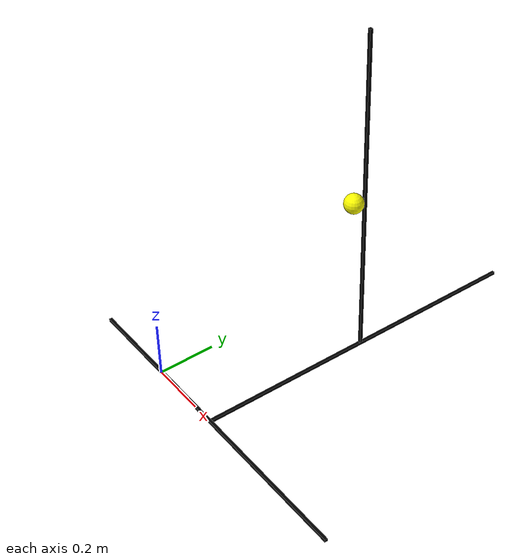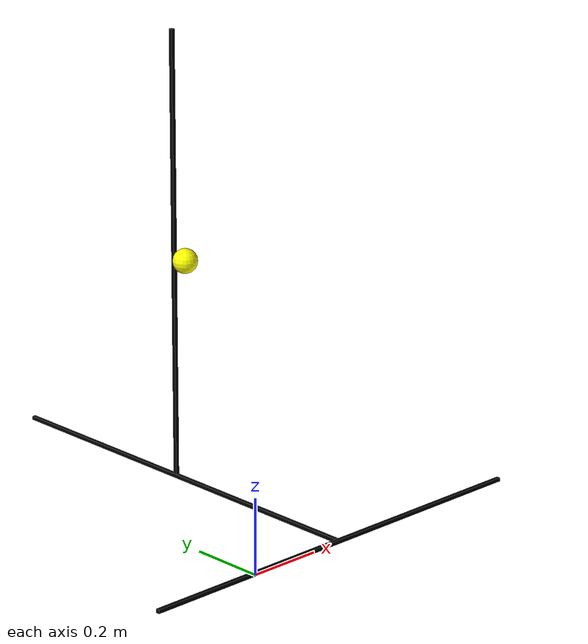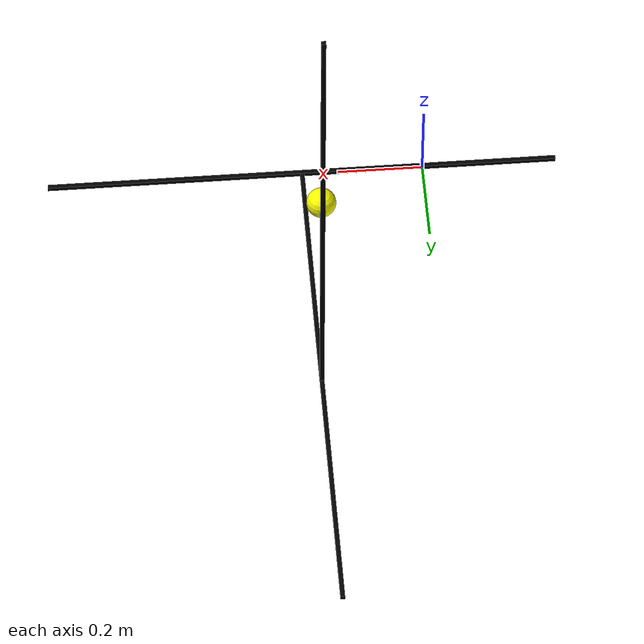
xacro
<?xml version="1.0"?>
<robot xmlns:xacro="http://www.ros.org/wiki/xacro"  name="tennis_ball">

  <!-- Material Definition -->
  <material name="yellow">
    <color rgba="1 1 0 1"/>
  </material>

  <material name="black">
    <color rgba="0 0 0 1"/>
  </material>

  <link name="world">
  </link>

  <link name="base_link">
    <origin xyz="0 0 0" rpy="0 0 0"/>
    <visual>
      <geometry>
        <box size="1.2 0.01 0.01"/>
      </geometry>
      <material name="black"/>
    </visual>
    <collision>
      <geometry>
        <box size="1.2 0.01 0.01"/>
      </geometry>
    </collision>
    <inertial>
      <mass value="10"/>
      <origin rpy="0 0 0" xyz="0 0 0"/>
      <inertia ixx="0.008333333333" ixy="0" ixz="0" iyy="0.0.06041666667" iyz="0" izz="0.0.06041666667"/>
    </inertial>
  </link>

  <!-- The gantry robot -->
  <link name="x_link">
    <visual>
      <origin xyz="0 0 0" rpy="0 0 0"/>
      <geometry>
        <box size="0.01 1.2 0.01"/>
      </geometry>
      <material name="black"/>
    </visual>

    <collision>
      <origin xyz="0 0 0" rpy="0 0 0"/>
      <geometry>
        <box size="0.01 1.2 0.01"/>
      </geometry>
    </collision>

    <inertial>
      <mass value="0.5"/>
      <origin rpy="0 0 0" xyz="0 0 0"/>
      <inertia ixx="0.0.06041666667" ixy="0" ixz="0" iyy="0.0008333333333" iyz="0" izz="0.0.06041666667"/>
    </inertial>
  </link>

  <link name="y_link">
    <visual>
      <origin xyz="0 0 0" rpy="0 0 0"/>
      <geometry>
        <box size="0.01 0.01 1.2"/>
      </geometry>
      <material name="black"/>
    </visual>

    <collision>
      <origin xyz="0 0 0" rpy="0 0 0"/>
      <geometry>
        <box size="0.01 0.01 1.2"/>
      </geometry>
    </collision>

    <inertial>
      <mass value="0.5"/>
      <origin rpy="0 0 0" xyz="0 0 0"/>
      <inertia ixx="0.0.06041666667" ixy="0" ixz="0" iyy="0.0.06041666667" iyz="0" izz="0.0008333333333"/>
    </inertial>
  </link>

  <link name="z_link">
    <visual>
      <origin xyz="0 0 0" rpy="0 0 0"/>
      <geometry>
        <box size="0.01 0.01 0.01"/>
      </geometry>
      <material name="black"/>
    </visual>

    <collision>
      <origin xyz="0 0 0" rpy="0 0 0"/>
      <geometry>
        <box size="0.01 0.01 0.1"/>
      </geometry>
    </collision>

    <inertial>
      <mass value="0.5"/>
      <origin rpy="0 0 0" xyz="0 0 0"/>
      <inertia ixx="0.0008333333333" ixy="0" ixz="0" iyy="0.0008333333333" iyz="0" izz="0.0008333333333"/>
    </inertial>
  </link>

  <!-- Link Definition -->
  <link name="ball">
    <visual>
      <origin xyz="0 0 0" rpy="0 0 0"/>
      <geometry>
        <sphere radius="0.033"/>
      </geometry>
      <material name="yellow"/>
    </visual>
    <collision>
      <origin xyz="0 0 0" rpy="0 0 0"/>
      <geometry>
        <sphere radius="0.033"/>
      </geometry>
    </collision>
    <inertial>
      <origin xyz="0 0 0" rpy="0 0 0"/>
      <mass value="1"/>
      <inertia ixx="0.001" ixy="0" ixz="0" iyy="0.001" iyz="0" izz="0.001"/>
    </inertial>
  </link>

  <!-- Joints  -->
  <joint name="world_to_base_link_joint" type="fixed">
      <origin xyz="0.285 0 0.005" rpy="0 0 0"/>
      <parent link="world"/>
      <child link="base_link"/>
  </joint>

  <joint name="x_joint" type="prismatic">
      <origin xyz="0 0.605 0" rpy="0 0 0"/>
      <parent link="base_link"/>
      <child link="x_link"/>
      <axis xyz="1 0 0"/>
      <limit effort="50" velocity="0.01" lower="-0.6" upper="0.6"/>
      <dynamics damping="100.0" friction="100.0"/>
  </joint>

  <joint name="y_joint" type="prismatic">
      <origin xyz="0 0 0.605" rpy="0 0 0"/>
      <parent link="x_link"/>
      <child link="y_link"/>
      <axis xyz="0 1 0"/>
      <limit effort="50" velocity="0.01" lower="-0.6" upper="0.6"/>
      <dynamics damping="100.0" friction="100.0"/>
  </joint>

  <joint name="z_joint" type="prismatic">
      <origin xyz="0 -0.01 0" rpy="0 0 0"/>
      <parent link="y_link"/>
      <child link="z_link"/>
      <axis xyz="0 0 1"/>
      <limit effort="50" velocity="0.01" lower="-0.6" upper="0.6"/>
      <dynamics damping="100.0" friction="100.0"/>
  </joint>

  <joint name="fixed_joint" type="fixed">
      <origin xyz="0 -0.033 0" rpy="0 0 0"/>
      <parent link="z_link"/>
      <child link="ball"/>
  </joint>

  <xacro:include filename="gazebo_plugin.xacro" />

</robot>
